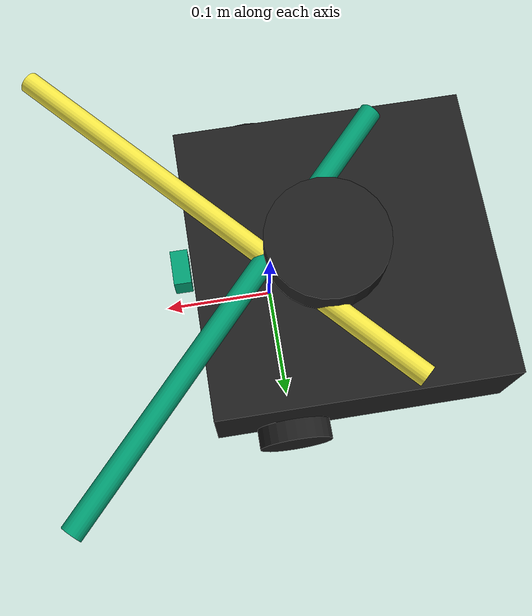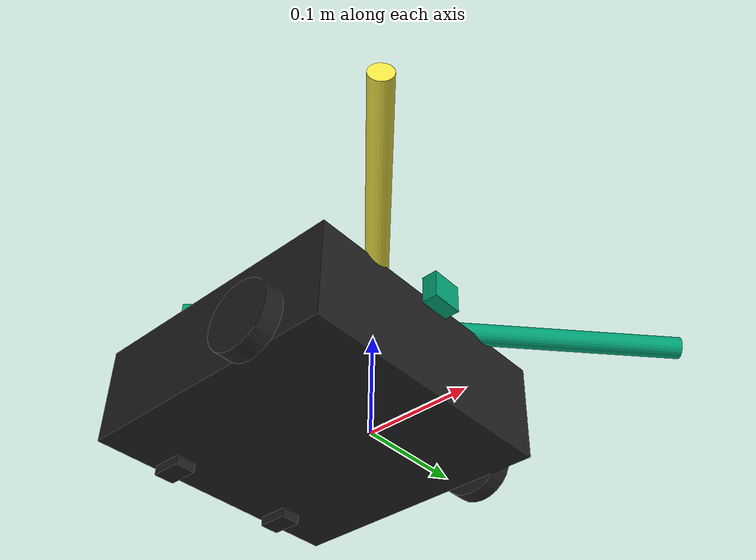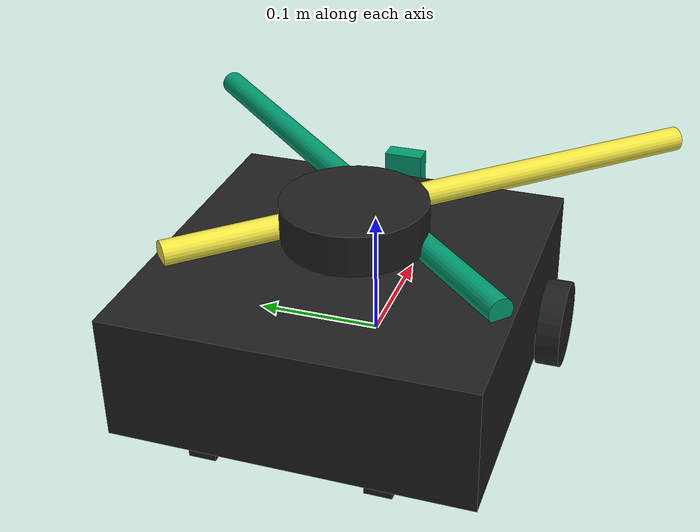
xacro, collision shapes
<?xml version="1.0" ?>
<robot name="turtlebot3_waffle_pi" xmlns:xacro="http://ros.org/wiki/xacro">
  <xacro:include filename="$(find turtlebot3_description)/urdf/common_properties.xacro"/>
  <xacro:include filename="$(find turtlebot3_description)/urdf/turtlebot3_waffle_pi.gazebo.xacro"/>

  <link name="base_footprint"/>

  <joint name="base_joint" type="fixed">
    <parent link="base_footprint"/>
    <child link="base_link" />
    <origin xyz="0 0 0.010" rpy="0 0 0"/>
  </joint>

  <link name="base_link">
    <visual>
      <origin xyz="-0.064 0 0.0" rpy="0 0 0"/>
      <geometry>
        <mesh filename="package://turtlebot3_description/meshes/bases/waffle_pi_base.stl" scale="0.001 0.001 0.001"/>
      </geometry>
      <material name="light_black"/>
    </visual>

    <collision>
      <origin xyz="-0.064 0 0.047" rpy="0 0 0"/>
      <geometry>
        <box size="0.266 0.266 0.094"/>
      </geometry>
    </collision>

    <inertial>
      <origin xyz="0 0 0" rpy="0 0 0"/>
      <mass value="1.3729096e+00"/>
      <inertia ixx="8.7002718e-03" ixy="-4.7576583e-05" ixz="1.1160499e-04"
               iyy="8.6195418e-03" iyz="-3.5422299e-06"
               izz="1.4612727e-02" />
    </inertial>
  </link>

  <!-- MY STUFF -->
  <link name="arm1_link">
    <inertial>
        <mass value="0.18" />
        <inertia ixx="0.0002835" ixy="0.0" ixz="0.0" iyy="0.0002835" iyz="0.0" izz="0.000324" />
    </inertial>
    <origin rpy="1.57 1.57 1.57" xyz="0.0 0.04 0.16" />
    <collision>
      <geometry>
        <cylinder length=".45" radius=".01" />
      </geometry>
    </collision>
    <visual>
      <geometry>
        <cylinder length=".45" radius=".01" />
      </geometry>
    </visual>
  </link>

  <link name="arm2_link">
    <inertial>
        <mass value="0.18" />
        <inertia ixx="0.0002835" ixy="0.0" ixz="0.0" iyy="0.0002835" iyz="0.0" izz="0.000324" />
    </inertial>
    <origin rpy="1.57 0 -0.75" xyz="0.0 -0.04 0.16" />
    <collision>
      <geometry>
        <cylinder length=".45" radius=".01" />
      </geometry>
    </collision>
    <visual>
      <geometry>
        <cylinder length=".45" radius=".01" />
      </geometry>
    </visual>
  </link>

  <joint name="base_to_arm_joint" type="revolute">
    <parent link="base_link"/>
    <child link="arm2_link"/>
    <limit effort="1000.0" lower="0.0" upper="0.0" velocity="0.5"/>
    <axis xyz="0 1 0"/>
    <origin xyz="0.04 -0.04 0.1" rpy="1.57 0.0 0.75"/>
  </joint>

  <joint name="arm_to_catcher_joint" type="continuous">
    <parent link="base_link"/>
    <child link="arm1_link"/>
    <axis xyz="1 0 0"/>
    <limit effort="1000.0" lower="0.0" upper="0.0" velocity="0.5"/>
    <origin xyz="0.04 0.04 0.1" rpy="1.57 0.0 -0.75"/>
  </joint>

  <!-- END MY STUFF -->

  <joint name="wheel_left_joint" type="continuous">
    <parent link="base_link"/>
    <child link="wheel_left_link"/>
    <origin xyz="0.0 0.144 0.023" rpy="-1.57 0 0"/>
    <axis xyz="0 0 1"/>
  </joint>

  <link name="wheel_left_link">
    <visual>
      <origin xyz="0 0 0" rpy="1.57 0 0"/>
      <geometry>
        <mesh filename="package://turtlebot3_description/meshes/wheels/left_tire.stl" scale="0.001 0.001 0.001"/>
      </geometry>
      <material name="dark"/>
    </visual>

    <collision>
      <origin xyz="0 0 0" rpy="0 0 0"/>
      <geometry>
        <cylinder length="0.018" radius="0.033"/>
      </geometry>
    </collision>

    <inertial>
      <origin xyz="0 0 0" />
      <mass value="2.8498940e-02" />
      <inertia ixx="1.1175580e-05" ixy="-4.2369783e-11" ixz="-5.9381719e-09"
               iyy="1.1192413e-05" iyz="-1.4400107e-11"
               izz="2.0712558e-05" />
      </inertial>
  </link>

  <joint name="wheel_right_joint" type="continuous">
    <parent link="base_link"/>
    <child link="wheel_right_link"/>
    <origin xyz="0.0 -0.144 0.023" rpy="-1.57 0 0"/>
    <axis xyz="0 0 1"/>
  </joint>

  <link name="wheel_right_link">
    <visual>
      <origin xyz="0 0 0" rpy="1.57 0 0"/>
      <geometry>
        <mesh filename="package://turtlebot3_description/meshes/wheels/right_tire.stl" scale="0.001 0.001 0.001"/>
      </geometry>
      <material name="dark"/>
    </visual>

    <collision>
      <origin xyz="0 0 0" rpy="0 0 0"/>
      <geometry>
        <cylinder length="0.018" radius="0.033"/>
      </geometry>
    </collision>

    <inertial>
      <origin xyz="0 0 0" />
      <mass value="2.8498940e-02" />
      <inertia ixx="1.1175580e-05" ixy="-4.2369783e-11" ixz="-5.9381719e-09"
               iyy="1.1192413e-05" iyz="-1.4400107e-11"
               izz="2.0712558e-05" />
      </inertial>
  </link>

  <joint name="caster_back_right_joint" type="fixed">
    <parent link="base_link"/>
    <child link="caster_back_right_link"/>
    <origin xyz="-0.177 -0.064 -0.004" rpy="-1.57 0 0"/>
  </joint>

  <link name="caster_back_right_link">
    <collision>
      <origin xyz="0 0.001 0" rpy="0 0 0"/>
      <geometry>
        <box size="0.030 0.009 0.020"/>
      </geometry>
    </collision>

    <inertial>
      <origin xyz="0 0 0" />
      <mass value="0.005" />
      <inertia ixx="0.001" ixy="0.0" ixz="0.0"
               iyy="0.001" iyz="0.0"
               izz="0.001" />
    </inertial>
  </link>

  <joint name="caster_back_left_joint" type="fixed">
    <parent link="base_link"/>
    <child link="caster_back_left_link"/>
    <origin xyz="-0.177 0.064 -0.004" rpy="-1.57 0 0"/>
  </joint>

  <link name="caster_back_left_link">
    <collision>
      <origin xyz="0 0.001 0" rpy="0 0 0"/>
      <geometry>
        <box size="0.030 0.009 0.020"/>
      </geometry>
    </collision>

    <inertial>
      <origin xyz="0 0 0" />
      <mass value="0.005" />
      <inertia ixx="0.001" ixy="0.0" ixz="0.0"
               iyy="0.001" iyz="0.0"
               izz="0.001" />
    </inertial>
  </link>

  <joint name="imu_joint" type="fixed">
    <parent link="base_link"/>
    <child link="imu_link"/>
    <origin xyz="0.0 0 0.068" rpy="0 0 0"/>
  </joint>

  <link name="imu_link"/>

  <joint name="scan_joint" type="fixed">
    <parent link="base_link"/>
    <child link="base_scan"/>
    <origin xyz="-0.064 0 0.122" rpy="0 0 0"/>
  </joint>

  <link name="base_scan">
    <visual>
      <origin xyz="0 0 0.0" rpy="0 0 0"/>
      <geometry>
        <mesh filename="package://turtlebot3_description/meshes/sensors/lds.stl" scale="0.001 0.001 0.001"/>
      </geometry>
      <material name="dark"/>
    </visual>

    <collision>
      <origin xyz="0.015 0 -0.0065" rpy="0 0 0"/>
      <geometry>
        <cylinder length="0.0315" radius="0.055"/>
      </geometry>
    </collision>

    <inertial>
      <mass value="0.114" />
      <origin xyz="0 0 0" />
      <inertia ixx="0.001" ixy="0.0" ixz="0.0"
               iyy="0.001" iyz="0.0"
               izz="0.001" />
    </inertial>
  </link>

  <joint name="camera_joint" type="fixed">
    <origin xyz="0.073 -0.011 0.084" rpy="0 0 0"/>
    <parent link="base_link"/>
    <child link="camera_link"/>
  </joint>

  <link name="camera_link">
    <collision>
      <origin xyz="0.005 0.011 0.013" rpy="0 0 0"/>
      <geometry>
        <box size="0.015 0.030 0.027"/>
      </geometry>
    </collision>
  </link>

  <joint name="camera_rgb_joint" type="fixed">
    <origin xyz="0.003 0.011 0.009" rpy="0 0 0"/>
    <parent link="camera_link"/>
    <child link="camera_rgb_frame"/>
  </joint>
  <link name="camera_rgb_frame"/>

  <joint name="camera_rgb_optical_joint" type="fixed">
    <origin xyz="0 0 0" rpy="-1.57 0 -1.57"/>
    <parent link="camera_rgb_frame"/>
    <child link="camera_rgb_optical_frame"/>
  </joint>
  <link name="camera_rgb_optical_frame"/>

</robot>
